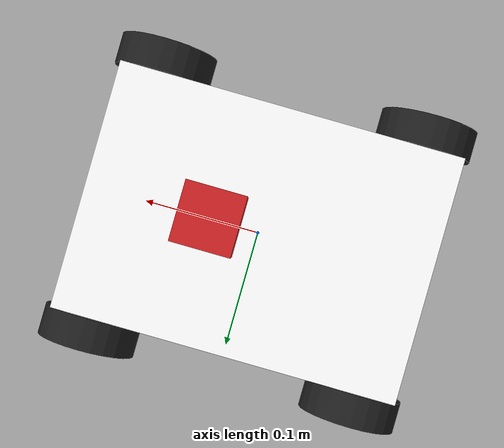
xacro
<?xml version="1.0" ?>
<robot name="mfwr" xmlns:xacro="http://www.ros.org/wiki/xacro">

<xacro:include filename="$(find mfwr_description)/urdf/macros.xacro" />
<xacro:include filename="$(find mfwr_description)/urdf/mfwr.gazebo" />

<xacro:chassis name="link_chassis"/>

<xacro:wheels name="link_frw" radius="0.0425" length="0.027"/>
<xacro:wheel_joints name="link_chassis__link_frw" origin_xyz="0.1175 0.121 -0.01" child_link="link_frw"/>
<xacro:transmissions name="tran1" joint_name="link_chassis__link_frw" actuator_name="motor1"/>

<xacro:wheels name="link_brw" radius="0.0425" length="0.027"/>
<xacro:wheel_joints name="link_chassis__link_brw" origin_xyz="-0.1175 0.121 -0.01" child_link="link_brw"/>
<xacro:transmissions name="tran2" joint_name="link_chassis__link_brw" actuator_name="motor2"/>

<xacro:wheels name="link_flw" radius="0.0425" length="0.027"/>
<xacro:wheel_joints name="link_chassis__link_flw" origin_xyz="0.1175 -0.121 -0.01" child_link="link_flw"/>
<xacro:transmissions name="tran3" joint_name="link_chassis__link_flw" actuator_name="motor3"/>

<xacro:wheels name="link_blw" radius="0.0425" length="0.027"/>
<xacro:wheel_joints name="link_chassis__link_blw" origin_xyz="-0.1175 -0.121 -0.01" child_link="link_blw"/>
<xacro:transmissions name="tran4" joint_name="link_chassis__link_blw" actuator_name="motor4"/>

<joint name="camera_joint" type="fixed">
    <axis xyz="0 1 0" />
    <origin xyz="0.04 0 0.06" rpy="0 0 0"/>
    <parent link="link_chassis"/>
    <child link="camera_link"/>
  </joint>

  <!-- Camera -->
  <link name="camera_link">
    <collision>
      <origin xyz="0 0 0" rpy="0 0 0"/>
      <geometry>
    <box size="0.05 0.05 0.05"/>
      </geometry>
    </collision>

    <visual>
      <origin xyz="0 0 0" rpy="0 0 0"/>
      <geometry>
    <box size="0.05 0.05 0.05"/>
      </geometry>
      <material name="red"/>
    </visual>

    <inertial>
      <mass value="1e-5" />
      <origin xyz="0 0 0" rpy="0 0 0"/>
      <inertia ixx="1e-6" ixy="0" ixz="0" iyy="1e-6" iyz="0" izz="1e-6" />
    </inertial>
  </link>
</robot>

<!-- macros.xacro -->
<robot xmlns:xacro="http://www.ros.org/wiki/xacro">

  <xacro:macro name="chassis" params="name">
    <link name="link_chassis">
        <inertial>
            <origin xyz="0.0 0.0 0.0" rpy="0.0 0.0 0.0"/>
            <mass value="0.878"/>
            <inertia ixx="0.003565046" ixy="0.0" ixz="0.0" iyy="0.009967129" iyz="0.0" izz="0.006767916"/>
        </inertial>
        <collision>
        <geometry>
            <box size="0.3 0.215 0.05"/>
        </geometry>
        </collision>
        <visual>
            <origin xyz="0.0 0.0 0.0" rpy="0.0 0.0 0.0"/>
            <geometry>
                <box size="0.3 0.215 0.05"/>
            </geometry>
            <material name="white"/>
        </visual>
    </link>
  </xacro:macro>

  <xacro:macro name="wheels" params="name radius length">
        <link name="${name}">
            <inertial>
                <origin xyz="0.0 0.0 0.0" rpy="0 1.5707 1.5707"/>
                <mass value="0.034"/>
                <inertia ixx="0.00005123" ixy="0.0" ixz="0.0" iyy="0.00005123" iyz="0.0" izz="0.0000307"/>
            </inertial>
        <collision>
            <origin xyz="0 0 0" rpy="0 1.5707 1.5707"/>
            <geometry>
                <cylinder radius="${radius}" length="${length}"/>
            </geometry>
        </collision>
        <visual>
            <origin xyz="0 0 0" rpy="0 1.5707 1.5707"/>
            <geometry>
                <cylinder radius="0.0425" length="0.027"/>
            </geometry>
        </visual>
        </link>
  </xacro:macro>

  <xacro:macro name="wheel_joints" params="name child_link origin_xyz">
    <joint name="${name}" type="continuous">
        <origin xyz="${origin_xyz}" rpy="0.0 0.0 0.0"/>
        <parent link="link_chassis"/>
        <child link="${child_link}"/>
        <axis xyz="0.0 1.0 0.0" rpy="0 0 0"/>
        <limit effort="100" velocity="100"/>
        <joint_properties damping="0.0" friction="0.0"/>
    </joint>
  </xacro:macro>

  <xacro:macro name="transmissions" params="name joint_name actuator_name">
        <transmission name="${name}">
            <type>transmission_interface/SimpleTransmission</type>
            <joint name="${joint_name}">
                <hardwareInterface>hardware_interface/EffortJointInterface</hardwareInterface>
            </joint>
            <actuator name="${actuator_name}">
                <hardwareInterface>hardware_interface/EffortJointInterface</hardwareInterface>
                <mechanicalReduction>1</mechanicalReduction>
            </actuator>
        </transmission>
  </xacro:macro>

</robot>

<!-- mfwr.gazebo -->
<robot>

    <material name="black">
        <color rgba="0.0 0.0 0.0 1.0"/>
    </material>
    <material name="blue">
        <color rgba="0.203125 0.23828125 0.28515625 1.0"/>
    </material>
    <material name="green">
        <color rgba="0.0 0.8 0.0 1.0"/>
    </material>
    <material name="grey">
        <color rgba="0.2 0.2 0.2 1.0"/>
    </material>
    <material name="orange">
        <color rgba="1.0 0.423529411765 0.0392156862745 1.0"/>
    </material>
    <material name="brown">
        <color rgba="0.870588235294 0.811764705882 0.764705882353 1.0"/>
    </material>
    <material name="red">
        <color rgba="0.80078125 0.12890625 0.1328125 1.0"/>
    </material>
    <material name="white">
        <color rgba="1.0 1.0 1.0 1.0"/>
    </material>

    <gazebo>
        <plugin name="gazebo_ros_control" filename="libgazebo_ros_control.so">
            <robotNamespace>/mfwr</robotNamespace>
            <robotSimType>gazebo_ros_control/DefaultRobotHWSim</robotSimType>
        </plugin>
    </gazebo>

    <gazebo reference="link_chassis">
        <material>Gazebo/White</material>
        <turnGravityOff>false</turnGravityOff>
    </gazebo>

    <gazebo reference="link_frw">
        <mu1 value="200.0"/>
        <mu2 value="100.0"/>
        <kp value="10000000.0"/>
        <kd value="1.0"/>
        <material>Gazebo/Black</material>
        <turnGravityOff>false</turnGravityOff>
    </gazebo>

    <gazebo reference="link_brw">
        <mu1 value="200.0"/>
        <mu2 value="100.0"/>
        <kp value="10000000.0"/>
        <kd value="1.0"/>
        <material>Gazebo/Black</material>
        <turnGravityOff>false</turnGravityOff>
    </gazebo>

    <gazebo reference="link_flw">
        <mu1 value="200.0"/>
        <mu2 value="100.0"/>
        <kp value="10000000.0"/>
        <kd value="1.0"/>
        <material>Gazebo/Black</material>
        <turnGravityOff>false</turnGravityOff>
    </gazebo>

    <gazebo reference="link_blw">
        <mu1 value="200.0"/>
        <mu2 value="100.0"/>
        <kp value="10000000.0"/>
        <kd value="1.0"/>
        <material>Gazebo/Black</material>
        <turnGravityOff>false</turnGravityOff>
    </gazebo>

    <gazebo>
        <plugin name="skid_steer_drive_controller" filename="libgazebo_ros_skid_steer_drive.so">
            <updateRate>100.0</updateRate>
            <robotNamespace>/mfwr</robotNamespace>
            <leftFrontJoint>link_chassis__link_flw</leftFrontJoint>
            <rightFrontJoint>link_chassis__link_frw</rightFrontJoint>
            <leftRearJoint>link_chassis__link_blw</leftRearJoint>
            <rightRearJoint>link_chassis__link_brw</rightRearJoint>
            <wheelSeparation>0.235</wheelSeparation>
            <wheelDiameter>0.085</wheelDiameter>
            <robotBaseFrame>link_chassis</robotBaseFrame>
            <torque>20</torque>
            <topicName>cmd_vel</topicName>
            <commandTopic>cmd_vel</commandTopic>
            <broadcastTF>false</broadcastTF>
        </plugin>
    </gazebo>

    <gazebo reference="camera_link">
  <sensor name="camera_link_camera" type="depth">
    <update_rate>20</update_rate>
    <camera>
      <horizontal_fov>1.047198</horizontal_fov>
      <image>
        <width>640</width>
        <height>480</height>
        <format>R8G8B8</format>
      </image>
      <clip>
        <near>0.05</near>
        <far>3</far>
      </clip>
    </camera>
    <plugin name="camera_link_controller" filename="libgazebo_ros_openni_kinect.so">
      <baseline>0.2</baseline>
      <alwaysOn>true</alwaysOn>
      <updateRate>1.0</updateRate>
      <cameraName>camera_link_ir</cameraName>
      <imageTopicName>/camera_link/color/image_raw</imageTopicName>
      <cameraInfoTopicName>/camera_link/color/camera_info</cameraInfoTopicName>
      <depthImageTopicName>/camera_link/depth/image_raw</depthImageTopicName>
      <depthImageInfoTopicName>/camera_link/depth/camera_info</depthImageInfoTopicName>
      <pointCloudTopicName>/camera_link/depth/points</pointCloudTopicName>
      <frameName>camera_link</frameName>
      <pointCloudCutoff>0.5</pointCloudCutoff>
      <pointCloudCutoffMax>3.0</pointCloudCutoffMax>
      <distortionK1>0.00000001</distortionK1>
      <distortionK2>0.00000001</distortionK2>
      <distortionK3>0.00000001</distortionK3>
      <distortionT1>0.00000001</distortionT1>
      <distortionT2>0.00000001</distortionT2>
      <CxPrime>0</CxPrime>
      <Cx>0</Cx>
      <Cy>0</Cy>
      <focalLength>0</focalLength>
      <hackBaseline>0</hackBaseline>
    </plugin>
  </sensor>
</gazebo>

</robot>
